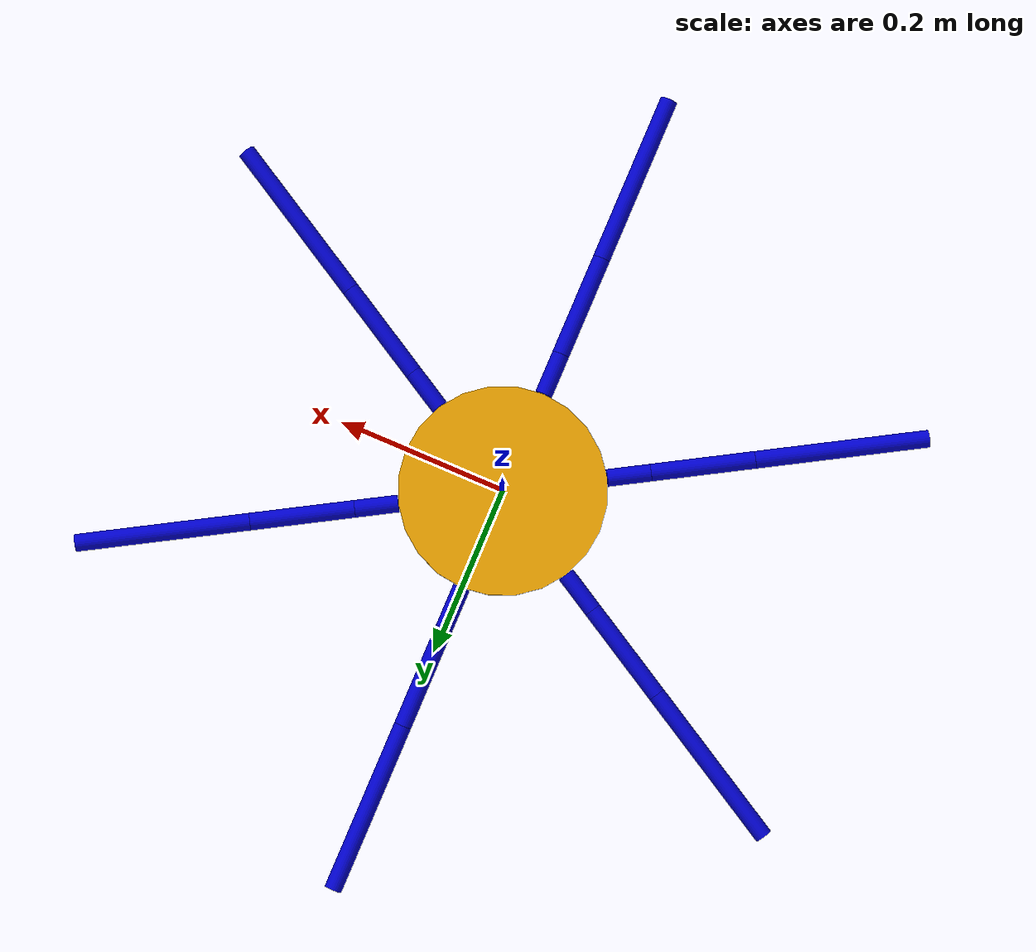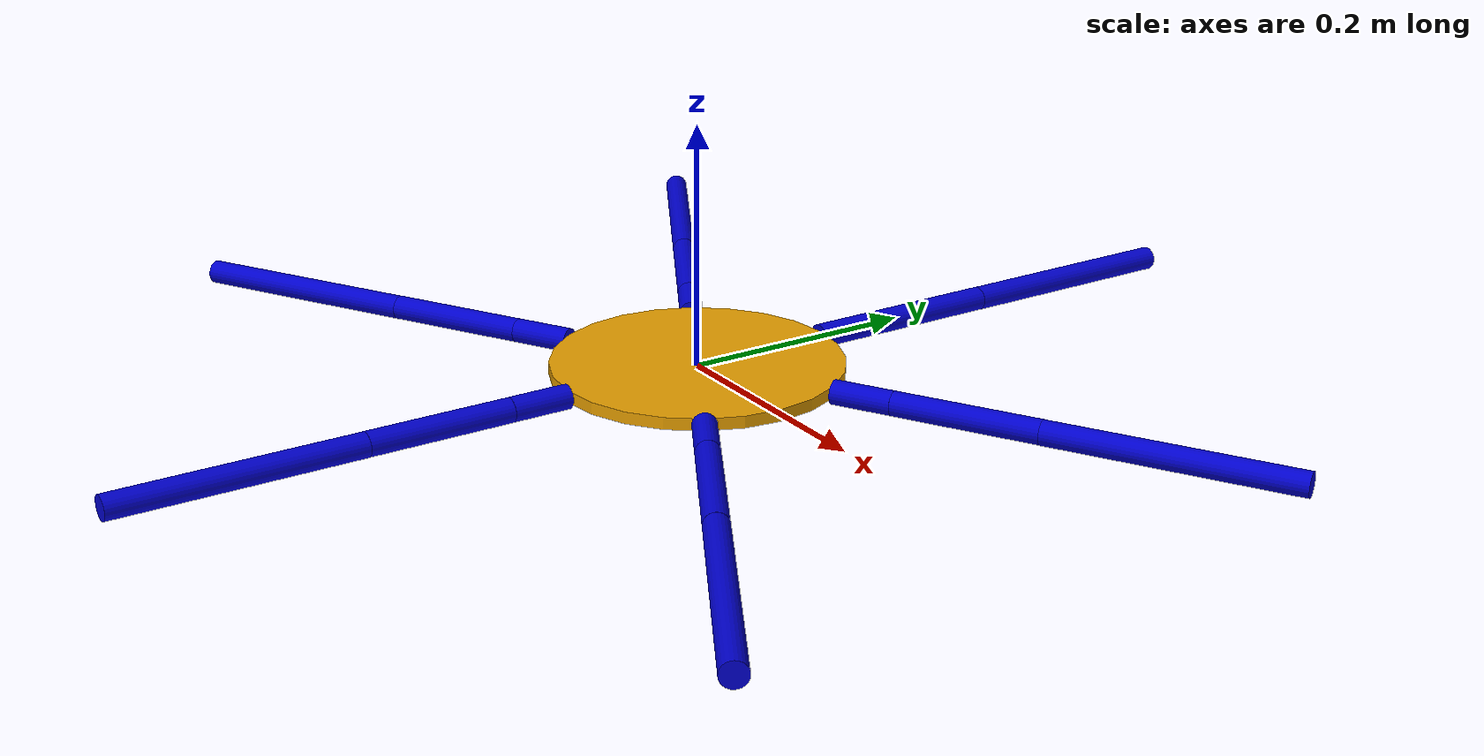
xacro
<?xml version="1.0"?>
<robot xmlns:xacro="http://ros.org/wiki/xacro" name="robot">
<!--build base link-->

  <link name="base_link">
    <visual>
      <geometry>
        <cylinder length="0.010" radius="0.120"/>
      </geometry>
      <origin xyz="0 0 0"/>
    </visual>
  </link>

<!-- xarco property-->
	<xacro:property name="pi" value="3.1415926535897931"/>
	<xacro:property name="joint_lower_limit" value="-${1.5}" />
	<xacro:property name="joint_upper_limit" value="${1.5}" />
	<xacro:property name="joint_effort" value="10000" />
	<xacro:property name="joint_velocity" value="100" />

<!--xarco leg-->
<xacro:macro name="leg" params="num x y angle">

<!--build leg-->
  <joint name="leg_coxa${num}" type="revolute">
    <parent link="base_link"/>
    <child link="coxa_link${num}"/>
	<limit lower="${joint_lower_limit}" upper="${joint_upper_limit}" effort="${joint_effort}" velocity="${joint_velocity}" />
	<axis xyz="0 0 1"/>
	<origin xyz="${x} ${y} 0 " rpy="0 0 ${angle}"/>
  </joint>

<link name="coxa_link${num}">
    <visual>
      <geometry>
        <cylinder length="0.050" radius="0.010"/>
	<!--mesh filename="package://robot_discription/mesh/t2.STL"/-->
      </geometry>
      <origin xyz="0 -0.025 0 " rpy="${pi/2}  0 0" />
      <material name="blue">
        <color rgba="0 0 .8 1"/>
      </material>
    </visual>
  </link>

  <joint name="femur_joint${num}" type="revolute">
    <parent link="coxa_link${num}"/>
    <child link="femur_link${num}"/>
	<limit effort="1000.0" lower="-1.57" upper="1.57" velocity="0.5"/>
	<axis xyz="1 0 0"/>
	<origin xyz="0 -0.050 0"/>
  </joint>

   <link name="femur_link${num}">
    <visual>
      <geometry>
        <cylinder length="0.120" radius="0.010"/>
      </geometry>
      <origin rpy="1.57 0 0" xyz="0 -0.060 0" />
      <material name="blue">
        <color rgba="0 0 .8 1"/>
      </material>
    </visual>
  </link>

  <joint name="tibia_joint${num}" type="revolute">
    <parent link="femur_link${num}"/>
    <child link="tibia_link${num}"/>
	<limit effort="1000.0" lower="-2" upper="2" velocity="0.5"/>
	<axis xyz="1 0 0"/>
	<origin xyz="0 -0.120 0"/>
  </joint>

   <link name="tibia_link${num}">
    <visual>
      <geometry>
        <cylinder length="0.200" radius="0.010"/>
      </geometry>
      <origin rpy="1.57 0 0" xyz="0 -0.100 0" />
      <material name="blue">
        <color rgba="0 0 .8 1"/>
      </material>
    </visual>
  </link>
</xacro:macro>

<!--build robot-->

<xacro:leg num="_r1" x="0" y="-0.120" 	angle="0" />
<xacro:leg num="_r2" x="-0.10392" y="-0.060" 	angle="${-pi/3}" />
<xacro:leg num="_r3" x="-0.10392" y="0.060" 	angle="${-2*pi/3}" />
<xacro:leg num="_l1" x="0" y="0.120" 	angle="${pi}" />
<xacro:leg num="_l2" x="0.10392" y="0.060" 	angle="${2*pi/3}" />
<xacro:leg num="_l3" x="0.10392" y="-0.060" 	angle="${pi/3}" />
</robot>
